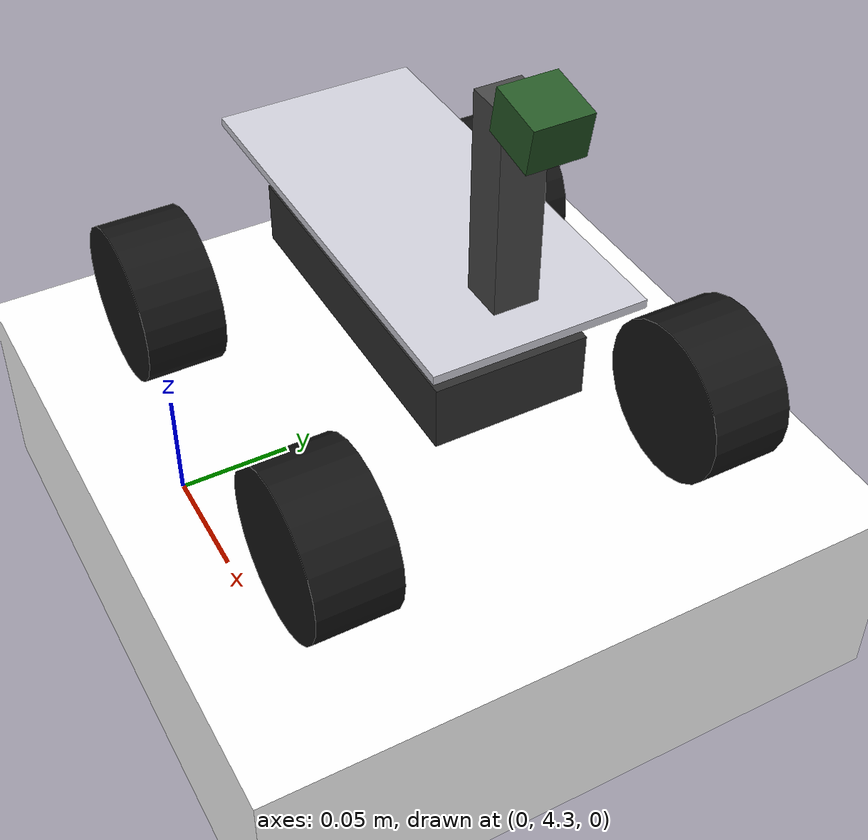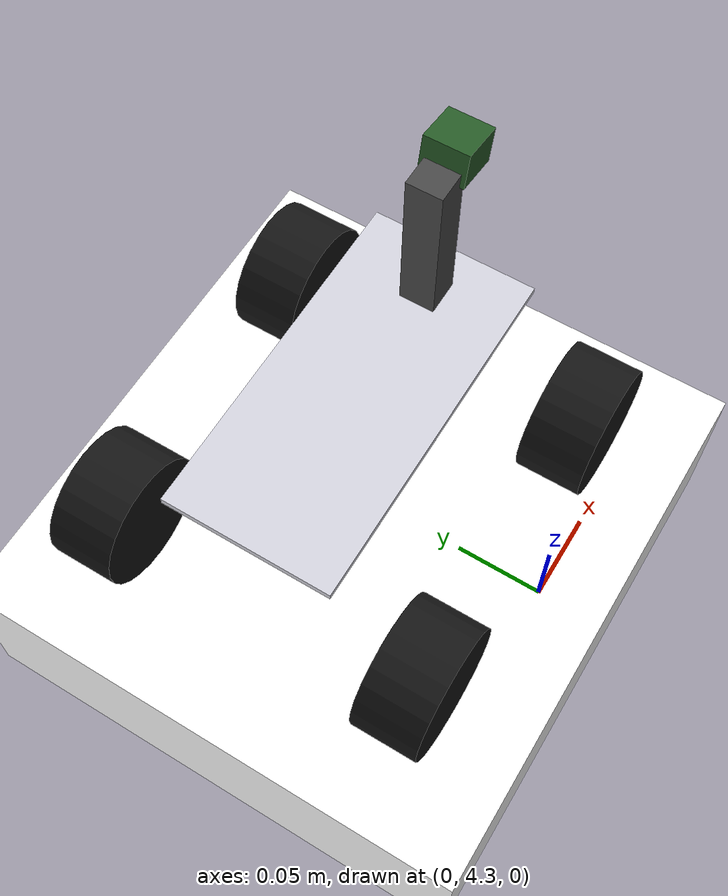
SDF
<sdf version='1.10'>
  <world name='default'>
    <gravity>0 0 -9.8000000000000007</gravity>
    <scene>
      <grid>false</grid>
      <shadows>true</shadows>
      <ambient>0.600000024 0.600000024 0.600000024 1</ambient>
      <background>0.400000006 0.600000024 0.899999976 1</background>
      <sky/>
    </scene>
    <plugin name='gz::sim::systems::Physics' filename='gz-sim-physics-system'/>
    <plugin name='gz::sim::systems::SceneBroadcaster' filename='gz-sim-scene-broadcaster-system'/>
    <plugin name='gz::sim::systems::Sensors' filename='gz-sim-sensors-system'/>
    <plugin name='gz::sim::systems::UserCommands' filename='gz-sim-user-commands-system'/>
    <magnetic_field>5.5644999999999998e-06 2.2875799999999999e-05 -4.2388400000000002e-05</magnetic_field>
    <atmosphere type='adiabatic'/>
    <physics type='ode'>
      <max_step_size>0.001</max_step_size>
      <real_time_factor>1</real_time_factor>
      <real_time_update_rate>1000</real_time_update_rate>
    </physics>
    <model name='ground_plane'>
      <static>true</static>
      <link name='link'>
        <collision name='collision'>
          <pose>0 0 -0.050000000000000003 0 0 0</pose>
          <geometry>
            <box>
              <size>20 20 0.10000000000000001</size>
            </box>
          </geometry>
          <surface>
            <friction>
              <ode/>
            </friction>
            <bounce/>
            <contact/>
          </surface>
        </collision>
        <visual name='visual'>
          <pose>0 0 -0.050000000000000003 0 0 0</pose>
          <geometry>
            <box>
              <size>20 20 0.10000000000000001</size>
            </box>
          </geometry>
          <material>
            <ambient>1 1 1 1</ambient>
            <diffuse>1 1 1 1</diffuse>
            <pbr>
              <metal>
                <albedo_map>course.png</albedo_map>
              </metal>
            </pbr>
          </material>
        </visual>
        <pose>0 0 0 0 0 0</pose>
        <inertial>
          <pose>0 0 0 0 0 0</pose>
          <mass>1</mass>
          <inertia>
            <ixx>1</ixx>
            <ixy>0</ixy>
            <ixz>0</ixz>
            <iyy>1</iyy>
            <iyz>0</iyz>
            <izz>1</izz>
          </inertia>
        </inertial>
        <enable_wind>false</enable_wind>
      </link>
      <pose>0 0 0 0 0 0</pose>
      <self_collide>false</self_collide>
    </model>
    <model name='ackermann_car'>
      <static>false</static>
      <self_collide>false</self_collide>
      <link name='chassis'>
        <pose>0 0 0.080000000000000002 0 0 0</pose>
        <inertial>
          <mass>1.3839999999999999</mass>
          <inertia>
            <ixx>0.0073000000000000001</ixx>
            <iyy>0.0091000000000000004</iyy>
            <izz>0.013100000000000001</izz>
            <ixy>0</ixy>
            <ixz>0</ixz>
            <iyz>0</iyz>
          </inertia>
          <pose>0 0 0 0 0 0</pose>
        </inertial>
        <collision name='base_collision'>
          <pose>0 0 -0.01 0 0 0</pose>
          <geometry>
            <box>
              <size>0.16 0.070000000000000007 0.029999999999999999</size>
            </box>
          </geometry>
          <surface>
            <friction>
              <ode/>
            </friction>
            <bounce/>
            <contact/>
          </surface>
        </collision>
        <collision name='platform_collision'>
          <pose>0 0 0.032000000000000001 0 0 0</pose>
          <geometry>
            <box>
              <size>0.20000000000000001 0.095000000000000001 0.0040000000000000001</size>
            </box>
          </geometry>
          <surface>
            <friction>
              <ode/>
            </friction>
            <bounce/>
            <contact/>
          </surface>
        </collision>
        <collision name='tower_collision'>
          <pose>0.070000000000000007 0 0.079000000000000001 0 0 0</pose>
          <geometry>
            <box>
              <size>0.02 0.02 0.089999999999999997</size>
            </box>
          </geometry>
          <surface>
            <friction>
              <ode/>
            </friction>
            <bounce/>
            <contact/>
          </surface>
        </collision>
        <visual name='base_visual'>
          <pose>0 0 -0.01 0 0 0</pose>
          <geometry>
            <box>
              <size>0.16 0.070000000000000007 0.029999999999999999</size>
            </box>
          </geometry>
          <material>
            <ambient>0.119999997 0.119999997 0.119999997 1</ambient>
            <diffuse>0.180000007 0.180000007 0.180000007 1</diffuse>
          </material>
        </visual>
        <visual name='platform_visual'>
          <pose>0 0 0.032000000000000001 0 0 0</pose>
          <geometry>
            <box>
              <size>0.20000000000000001 0.095000000000000001 0.0040000000000000001</size>
            </box>
          </geometry>
          <material>
            <ambient>0.75 0.75 0.779999971 1</ambient>
            <diffuse>0.819999993 0.819999993 0.860000014 1</diffuse>
          </material>
        </visual>
        <visual name='tower_visual'>
          <pose>0.070000000000000007 0 0.079000000000000001 0 0 0</pose>
          <geometry>
            <box>
              <size>0.02 0.02 0.089999999999999997</size>
            </box>
          </geometry>
          <material>
            <ambient>0.200000003 0.200000003 0.200000003 1</ambient>
            <diffuse>0.280000001 0.280000001 0.280000001 1</diffuse>
          </material>
        </visual>
        <enable_wind>false</enable_wind>
      </link>
      <link name='front_left_steering'>
        <pose>0.087499999999999994 0.092075000000000351 0.038100000000000002 0 0 0</pose>
        <inertial>
          <mass>0.02</mass>
          <inertia>
            <ixx>1.9999999999999999e-06</ixx>
            <iyy>1.9999999999999999e-06</iyy>
            <izz>1.9999999999999999e-06</izz>
            <ixy>0</ixy>
            <ixz>0</ixz>
            <iyz>0</iyz>
          </inertia>
          <pose>0 0 0 0 0 0</pose>
        </inertial>
        <enable_wind>false</enable_wind>
      </link>
      <link name='front_right_steering'>
        <pose>0.087499999999999994 -0.092075000000000351 0.038100000000000002 0 0 0</pose>
        <inertial>
          <mass>0.02</mass>
          <inertia>
            <ixx>1.9999999999999999e-06</ixx>
            <iyy>1.9999999999999999e-06</iyy>
            <izz>1.9999999999999999e-06</izz>
            <ixy>0</ixy>
            <ixz>0</ixz>
            <iyz>0</iyz>
          </inertia>
          <pose>0 0 0 0 0 0</pose>
        </inertial>
        <enable_wind>false</enable_wind>
      </link>
      <link name='front_left_wheel'>
        <pose>0.087499999999999994 0.092075000000000351 0.038100000000000002 0 0 0</pose>
        <inertial>
          <mass>0.089999999999999997</mass>
          <inertia>
            <ixx>4.3999999999999999e-05</ixx>
            <iyy>6.4999999999999994e-05</iyy>
            <izz>4.3999999999999999e-05</izz>
            <ixy>0</ixy>
            <ixz>0</ixz>
            <iyz>0</iyz>
          </inertia>
          <pose>0 0 0 0 0 0</pose>
        </inertial>
        <collision name='collision'>
          <geometry>
            <sphere>
              <radius>0.038100000000000002</radius>
            </sphere>
          </geometry>
          <surface>
            <friction>
              <ode>
                <mu>1</mu>
                <mu2>1</mu2>
              </ode>
            </friction>
            <bounce/>
            <contact/>
          </surface>
        </collision>
        <visual name='visual'>
          <pose>0 0 0 1.57079632679 0 0</pose>
          <geometry>
            <cylinder>
              <radius>0.038100000000000002</radius>
              <length>0.038100000000000002</length>
            </cylinder>
          </geometry>
          <material>
            <ambient>0.0399999991 0.0399999991 0.0399999991 1</ambient>
            <diffuse>0.0799999982 0.0799999982 0.0799999982 1</diffuse>
          </material>
        </visual>
        <enable_wind>false</enable_wind>
      </link>
      <link name='front_right_wheel'>
        <pose>0.087499999999999994 -0.092075000000000351 0.038100000000000002 0 0 0</pose>
        <inertial>
          <mass>0.089999999999999997</mass>
          <inertia>
            <ixx>4.3999999999999999e-05</ixx>
            <iyy>6.4999999999999994e-05</iyy>
            <izz>4.3999999999999999e-05</izz>
            <ixy>0</ixy>
            <ixz>0</ixz>
            <iyz>0</iyz>
          </inertia>
          <pose>0 0 0 0 0 0</pose>
        </inertial>
        <collision name='collision'>
          <geometry>
            <sphere>
              <radius>0.038100000000000002</radius>
            </sphere>
          </geometry>
          <surface>
            <friction>
              <ode>
                <mu>1</mu>
                <mu2>1</mu2>
              </ode>
            </friction>
            <bounce/>
            <contact/>
          </surface>
        </collision>
        <visual name='visual'>
          <pose>0 0 0 1.57079632679 0 0</pose>
          <geometry>
            <cylinder>
              <radius>0.038100000000000002</radius>
              <length>0.038100000000000002</length>
            </cylinder>
          </geometry>
          <material>
            <ambient>0.0399999991 0.0399999991 0.0399999991 1</ambient>
            <diffuse>0.0799999982 0.0799999982 0.0799999982 1</diffuse>
          </material>
        </visual>
        <enable_wind>false</enable_wind>
      </link>
      <link name='rear_left_wheel'>
        <pose>-0.087499999999999994 0.092075000000000351 0.038100000000000002 0 0 0</pose>
        <inertial>
          <mass>0.089999999999999997</mass>
          <inertia>
            <ixx>4.3999999999999999e-05</ixx>
            <iyy>6.4999999999999994e-05</iyy>
            <izz>4.3999999999999999e-05</izz>
            <ixy>0</ixy>
            <ixz>0</ixz>
            <iyz>0</iyz>
          </inertia>
          <pose>0 0 0 0 0 0</pose>
        </inertial>
        <collision name='collision'>
          <geometry>
            <sphere>
              <radius>0.038100000000000002</radius>
            </sphere>
          </geometry>
          <surface>
            <friction>
              <ode>
                <mu>1</mu>
                <mu2>1</mu2>
              </ode>
            </friction>
            <bounce/>
            <contact/>
          </surface>
        </collision>
        <visual name='visual'>
          <pose>0 0 0 1.57079632679 0 0</pose>
          <geometry>
            <cylinder>
              <radius>0.038100000000000002</radius>
              <length>0.038100000000000002</length>
            </cylinder>
          </geometry>
          <material>
            <ambient>0.0399999991 0.0399999991 0.0399999991 1</ambient>
            <diffuse>0.0799999982 0.0799999982 0.0799999982 1</diffuse>
          </material>
        </visual>
        <enable_wind>false</enable_wind>
      </link>
      <link name='rear_right_wheel'>
        <pose>-0.087499999999999994 -0.092075000000000351 0.038100000000000002 0 0 0</pose>
        <inertial>
          <mass>0.089999999999999997</mass>
          <inertia>
            <ixx>4.3999999999999999e-05</ixx>
            <iyy>6.4999999999999994e-05</iyy>
            <izz>4.3999999999999999e-05</izz>
            <ixy>0</ixy>
            <ixz>0</ixz>
            <iyz>0</iyz>
          </inertia>
          <pose>0 0 0 0 0 0</pose>
        </inertial>
        <collision name='collision'>
          <geometry>
            <sphere>
              <radius>0.038100000000000002</radius>
            </sphere>
          </geometry>
          <surface>
            <friction>
              <ode>
                <mu>1</mu>
                <mu2>1</mu2>
              </ode>
            </friction>
            <bounce/>
            <contact/>
          </surface>
        </collision>
        <visual name='visual'>
          <pose>0 0 0 1.57079632679 0 0</pose>
          <geometry>
            <cylinder>
              <radius>0.038100000000000002</radius>
              <length>0.038100000000000002</length>
            </cylinder>
          </geometry>
          <material>
            <ambient>0.0399999991 0.0399999991 0.0399999991 1</ambient>
            <diffuse>0.0799999982 0.0799999982 0.0799999982 1</diffuse>
          </material>
        </visual>
        <enable_wind>false</enable_wind>
      </link>
      <link name='camera_link'>
        <pose>0.089999999999999997 0 0.20399999999999999 0 0.17453299999999994 0</pose>
        <inertial>
          <mass>0.050000000000000003</mass>
          <inertia>
            <ixx>5.0000000000000004e-06</ixx>
            <iyy>5.0000000000000004e-06</iyy>
            <izz>5.0000000000000004e-06</izz>
            <ixy>0</ixy>
            <ixz>0</ixz>
            <iyz>0</iyz>
          </inertia>
          <pose>0 0 0 0 0 0</pose>
        </inertial>
        <visual name='camera_body_visual'>
          <geometry>
            <box>
              <size>0.025000000000000001 0.025000000000000001 0.02</size>
            </box>
          </geometry>
          <material>
            <ambient>0.100000001 0.219999999 0.100000001 1</ambient>
            <diffuse>0.150000006 0.349999994 0.150000006 1</diffuse>
          </material>
        </visual>
        <sensor name='front_camera' type='camera'>
          <pose>0 0 0 0 0 0</pose>
          <always_on>true</always_on>
          <visualize>true</visualize>
          <topic>/debug_camera/image</topic>
          <update_rate>30</update_rate>
          <enable_metrics>false</enable_metrics>
          <camera name='__default__'>
            <pose>0 0 0 0 0 0</pose>
            <horizontal_fov>1.0469999999999999</horizontal_fov>
            <image>
              <width>640</width>
              <height>480</height>
              <format>RGB_INT8</format>
              <anti_aliasing>4</anti_aliasing>
            </image>
            <camera_info_topic>__default__</camera_info_topic>
            <trigger_topic></trigger_topic>
            <triggered>false</triggered>
            <clip>
              <near>0.02</near>
              <far>100</far>
            </clip>
            <save enabled='false'>
              <path>__default__</path>
            </save>
            <visibility_mask>4294967295</visibility_mask>
            <noise>
              <type>none</type>
              <mean>0</mean>
              <stddev>0</stddev>
            </noise>
            <distortion>
              <k1>0</k1>
              <k2>0</k2>
              <k3>0</k3>
              <p1>0</p1>
              <p2>0</p2>
              <center>0.5 0.5</center>
            </distortion>
            <lens>
              <type>stereographic</type>
              <scale_to_hfov>true</scale_to_hfov>
              <cutoff_angle>1.5707963267948966</cutoff_angle>
              <env_texture_size>256</env_texture_size>
            </lens>
            <optical_frame_id></optical_frame_id>
          </camera>
        </sensor>
        <enable_wind>false</enable_wind>
      </link>
      <joint name='front_left_steer_joint' type='revolute'>
        <parent>chassis</parent>
        <child>front_left_steering</child>
        <axis>
          <xyz>0 0 1</xyz>
          <limit>
            <lower>-0.59999999999999998</lower>
            <upper>0.59999999999999998</upper>
            <effort>100</effort>
            <velocity>5</velocity>
            <stiffness>100000000</stiffness>
            <dissipation>1</dissipation>
          </limit>
          <dynamics>
            <spring_reference>0</spring_reference>
            <spring_stiffness>0</spring_stiffness>
            <damping>0.40000000000000002</damping>
            <friction>0</friction>
          </dynamics>
        </axis>
        <pose>0 0 0 0 0 0</pose>
      </joint>
      <joint name='front_right_steer_joint' type='revolute'>
        <parent>chassis</parent>
        <child>front_right_steering</child>
        <axis>
          <xyz>0 0 1</xyz>
          <limit>
            <lower>-0.59999999999999998</lower>
            <upper>0.59999999999999998</upper>
            <effort>100</effort>
            <velocity>5</velocity>
            <stiffness>100000000</stiffness>
            <dissipation>1</dissipation>
          </limit>
          <dynamics>
            <spring_reference>0</spring_reference>
            <spring_stiffness>0</spring_stiffness>
            <damping>0.40000000000000002</damping>
            <friction>0</friction>
          </dynamics>
        </axis>
        <pose>0 0 0 0 0 0</pose>
      </joint>
      <joint name='front_left_wheel_joint' type='revolute'>
        <parent>front_left_steering</parent>
        <child>front_left_wheel</child>
        <axis>
          <xyz>0 1 0</xyz>
          <limit>
            <lower>-1000000</lower>
            <upper>1000000</upper>
            <effort>100</effort>
            <velocity>100</velocity>
            <stiffness>100000000</stiffness>
            <dissipation>1</dissipation>
          </limit>
          <dynamics>
            <spring_reference>0</spring_reference>
            <spring_stiffness>0</spring_stiffness>
            <damping>0.050000000000000003</damping>
            <friction>0</friction>
          </dynamics>
        </axis>
        <pose>0 0 0 0 0 0</pose>
      </joint>
      <joint name='front_right_wheel_joint' type='revolute'>
        <parent>front_right_steering</parent>
        <child>front_right_wheel</child>
        <axis>
          <xyz>0 1 0</xyz>
          <limit>
            <lower>-1000000</lower>
            <upper>1000000</upper>
            <effort>100</effort>
            <velocity>100</velocity>
            <stiffness>100000000</stiffness>
            <dissipation>1</dissipation>
          </limit>
          <dynamics>
            <spring_reference>0</spring_reference>
            <spring_stiffness>0</spring_stiffness>
            <damping>0.050000000000000003</damping>
            <friction>0</friction>
          </dynamics>
        </axis>
        <pose>0 0 0 0 0 0</pose>
      </joint>
      <joint name='rear_left_wheel_joint' type='revolute'>
        <parent>chassis</parent>
        <child>rear_left_wheel</child>
        <axis>
          <xyz>0 1 0</xyz>
          <limit>
            <lower>-1000000</lower>
            <upper>1000000</upper>
            <effort>100</effort>
            <velocity>100</velocity>
            <stiffness>100000000</stiffness>
            <dissipation>1</dissipation>
          </limit>
          <dynamics>
            <spring_reference>0</spring_reference>
            <spring_stiffness>0</spring_stiffness>
            <damping>0.050000000000000003</damping>
            <friction>0</friction>
          </dynamics>
        </axis>
        <pose>0 0 0 0 0 0</pose>
      </joint>
      <joint name='rear_right_wheel_joint' type='revolute'>
        <parent>chassis</parent>
        <child>rear_right_wheel</child>
        <axis>
          <xyz>0 1 0</xyz>
          <limit>
            <lower>-1000000</lower>
            <upper>1000000</upper>
            <effort>100</effort>
            <velocity>100</velocity>
            <stiffness>100000000</stiffness>
            <dissipation>1</dissipation>
          </limit>
          <dynamics>
            <spring_reference>0</spring_reference>
            <spring_stiffness>0</spring_stiffness>
            <damping>0.050000000000000003</damping>
            <friction>0</friction>
          </dynamics>
        </axis>
        <pose>0 0 0 0 0 0</pose>
      </joint>
      <joint name='camera_mount_joint' type='fixed'>
        <parent>chassis</parent>
        <child>camera_link</child>
        <pose>6.9388939039072284e-18 0 0 0 0 0</pose>
      </joint>
      <plugin name='gz::sim::systems::AckermannSteering' filename='gz-sim-ackermann-steering-system'>
        <topic>/cmd_vel</topic>
        <left_joint>rear_left_wheel_joint</left_joint>
        <right_joint>rear_right_wheel_joint</right_joint>
        <left_steering_joint>front_left_steer_joint</left_steering_joint>
        <right_steering_joint>front_right_steer_joint</right_steering_joint>
        <wheel_base>0.175</wheel_base>
        <wheel_separation>0.18415</wheel_separation>
        <kingpin_width>0.18415</kingpin_width>
        <wheel_radius>0.0381</wheel_radius>
        <steering_limit>0.6</steering_limit>
        <steer_p_gain>12</steer_p_gain>
        <min_velocity>-1.5</min_velocity>
        <max_velocity>1.5</max_velocity>
        <min_acceleration>-3.0</min_acceleration>
        <max_acceleration>3.0</max_acceleration>
        <odom_publish_frequency>30</odom_publish_frequency>
      </plugin>
      <pose>0 4.4179739952087402 0 0 0 0</pose>
    </model>
    <model name='fluorescent_ceiling_light'>
      <static>true</static>
      <link name='panel_link'>
        <pose>0 0 0 0 0 0</pose>
        <collision name='panel_collision'>
          <geometry>
            <box>
              <size>1.2 0.29999999999999999 0.050000000000000003</size>
            </box>
          </geometry>
          <surface>
            <friction>
              <ode/>
            </friction>
            <bounce/>
            <contact/>
          </surface>
        </collision>
        <visual name='panel_visual'>
          <geometry>
            <box>
              <size>1.2 0.29999999999999999 0.050000000000000003</size>
            </box>
          </geometry>
          <material>
            <ambient>0.200000003 0.200000003 0.200000003 1</ambient>
            <diffuse>1 1 1 1</diffuse>
            <emissive>0.800000012 0.800000012 0.699999988 1</emissive>
            <specular>0.200000003 0.200000003 0.200000003 1</specular>
          </material>
          <pose>0 0 -0.025000000000000001 0 0 0</pose>
        </visual>
        <light name='panel_light' type='spot'>
          <pose>0 0 -0.029999999999999999 0 0 0</pose>
          <cast_shadows>true</cast_shadows>
          <intensity>1</intensity>
          <direction>0 0 -1</direction>
          <diffuse>1 0.980000019 0.899999976 1</diffuse>
          <specular>0.5 0.5 0.5 1</specular>
          <attenuation>
            <range>10</range>
            <linear>0.20000000000000001</linear>
            <constant>0.80000000000000004</constant>
            <quadratic>0.02</quadratic>
          </attenuation>
          <spot>
            <inner_angle>0.90000000000000002</inner_angle>
            <outer_angle>1.2</outer_angle>
            <falloff>0.5</falloff>
          </spot>
        </light>
        <inertial>
          <pose>0 0 0 0 0 0</pose>
          <mass>1</mass>
          <inertia>
            <ixx>1</ixx>
            <ixy>0</ixy>
            <ixz>0</ixz>
            <iyy>1</iyy>
            <iyz>0</iyz>
            <izz>1</izz>
          </inertia>
        </inertial>
        <enable_wind>false</enable_wind>
      </link>
      <pose>2 -2 3 0 0 0</pose>
      <self_collide>false</self_collide>
    </model>
    <light name='sun' type='directional'>
      <pose>0 0 10 0 0 0</pose>
      <cast_shadows>true</cast_shadows>
      <intensity>1</intensity>
      <direction>-0.40000000000000002 0.20000000000000001 -1</direction>
      <diffuse>0.899999976 0.899999976 0.899999976 1</diffuse>
      <specular>0.300000012 0.300000012 0.300000012 1</specular>
      <attenuation>
        <range>10</range>
        <linear>1</linear>
        <constant>1</constant>
        <quadratic>0</quadratic>
      </attenuation>
      <spot>
        <inner_angle>0</inner_angle>
        <outer_angle>0</outer_angle>
        <falloff>0</falloff>
      </spot>
    </light>
    <light name='fluorescent_panel_spot' type='spot'>
      <pose>2 -2 3 0 0 0</pose>
      <cast_shadows>true</cast_shadows>
      <intensity>1</intensity>
      <direction>0 0 -1</direction>
      <diffuse>1 0.980000019 0.899999976 1</diffuse>
      <specular>0.300000012 0.300000012 0.300000012 1</specular>
      <attenuation>
        <range>15</range>
        <linear>0.10000000000000001</linear>
        <constant>0.5</constant>
        <quadratic>0.02</quadratic>
      </attenuation>
      <spot>
        <inner_angle>0.90000000000000002</inner_angle>
        <outer_angle>1.2</outer_angle>
        <falloff>0.5</falloff>
      </spot>
    </light>
  </world>
</sdf>
